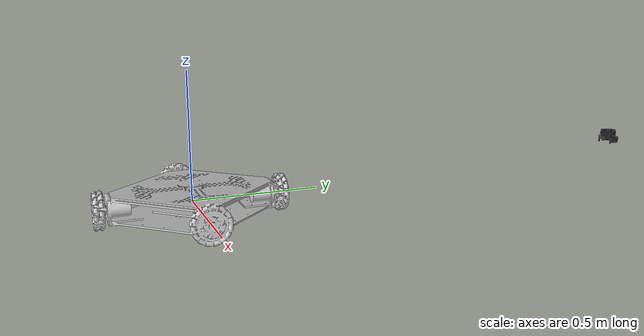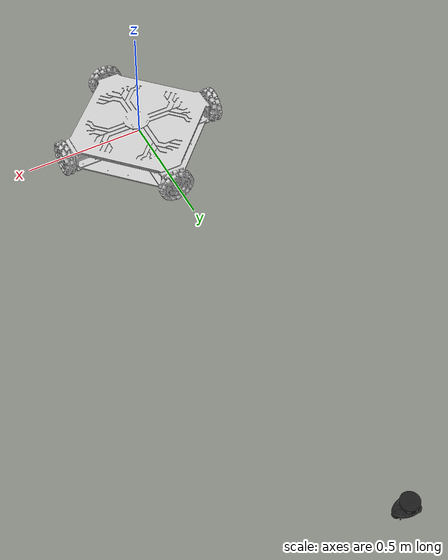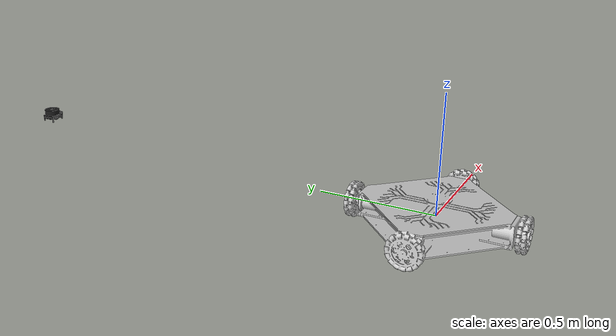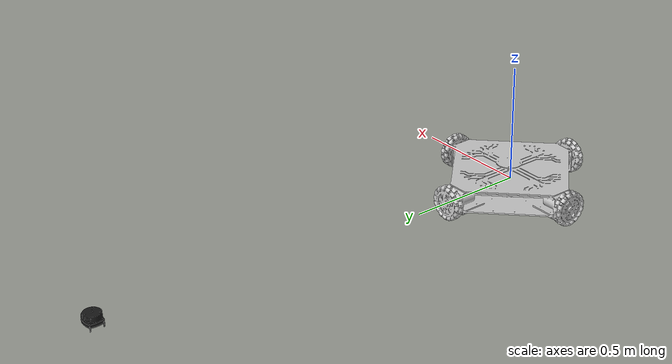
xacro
<?xml version="1.0"?>
<robot xmlns:xacro="http://www.ros.org/wiki/xacro" name="lidar_robot">
    <xacro:property name="pi" value="3.14159265359"/>
    <link name="base_link">
        <inertial>
            <origin xyz="-0.0099877 -7.87679999999704E-06 0.048337" rpy="0 0 0"/>
            <mass value="6.0202"/>
            <inertia ixx="0.193404669051707" ixy="-1.57451867364915E-06" ixz="7.52537384896092E-06" iyy="1.01182032486468E-06" iyz="-0.193412304186565" izz="-1.01182032483072E-06"/>
        </inertial>
        <visual>
            <origin xyz="0 0 0" rpy="${pi/2} 0 0"/>
            <geometry>
                <mesh filename="package://lidar_robot/meshes/base.stl"/>
            </geometry>
            <material name="">
                <color rgba="0.8 0.8 0.8 1"/>
            </material>
        </visual>
        <collision>
            <origin xyz="0 0 0" rpy="${pi/2} 0 0"/>
            <geometry>
                <mesh filename="package://lidar_robot/meshes/base.stl"/>
            </geometry>
        </collision>
    </link>
    <link name="rplidar">
        <collision>
            <origin xyz="0 0 0" rpy="0 0 0"/>
            <geometry>
                <box size="0.1 0.1 0.1"/>
            </geometry>
        </collision>
        <visual>
            <origin xyz="0 0 0.11675" rpy="${pi/2} 0 0"/>
            <geometry>
                <mesh filename="package://lidar_robot/meshes/rplidar.stl"/>
            </geometry>
            <material name="">
                <color rgba="0.1 0.1 0.1 1"/>
            </material>
        </visual>
        <inertial>
            <origin xyz="0.010606 0.000652570000000001 0.015976" rpy="0 0 0"/>
            <mass value="0.095964"/>
            <inertia ixx="4.20678723401718E-05" ixy="-1.30097836316357E-05" ixz="4.33129403884459E-07" iyy="1.48659304158389E-06" iyz="-7.76207439662319E-05" izz="-1.48659304158388E-06"/>
        </inertial>
    </link>
    <joint name="rplidar_joint" type="fixed">
        <axis xyz="1 0 0"/>
        <origin xyz="0 2 0" rpy="0 0 0"/>
        <child link="rplidar"/>
        <parent link="base_link"/>
    </joint>
</robot>
